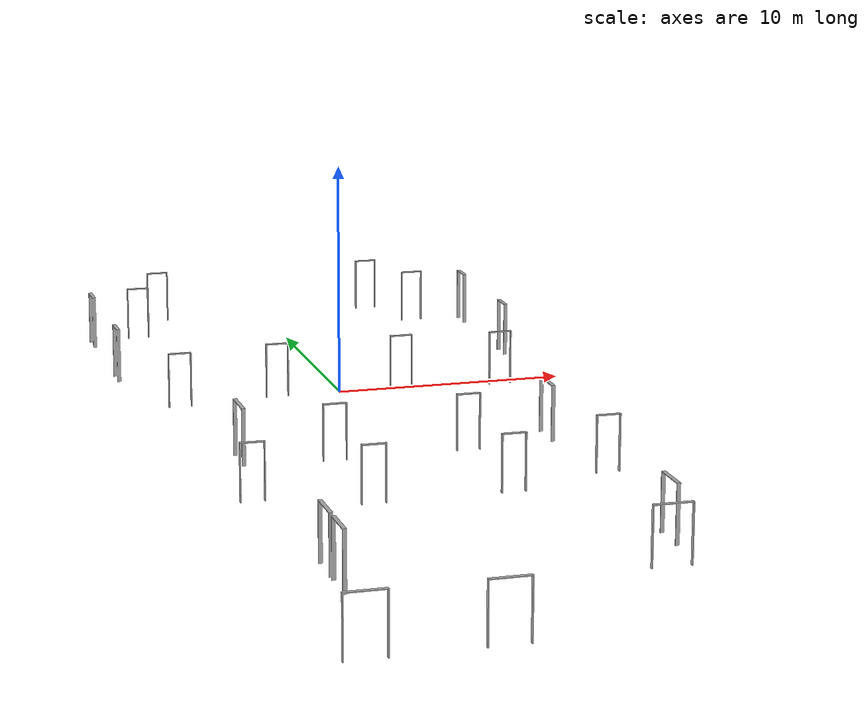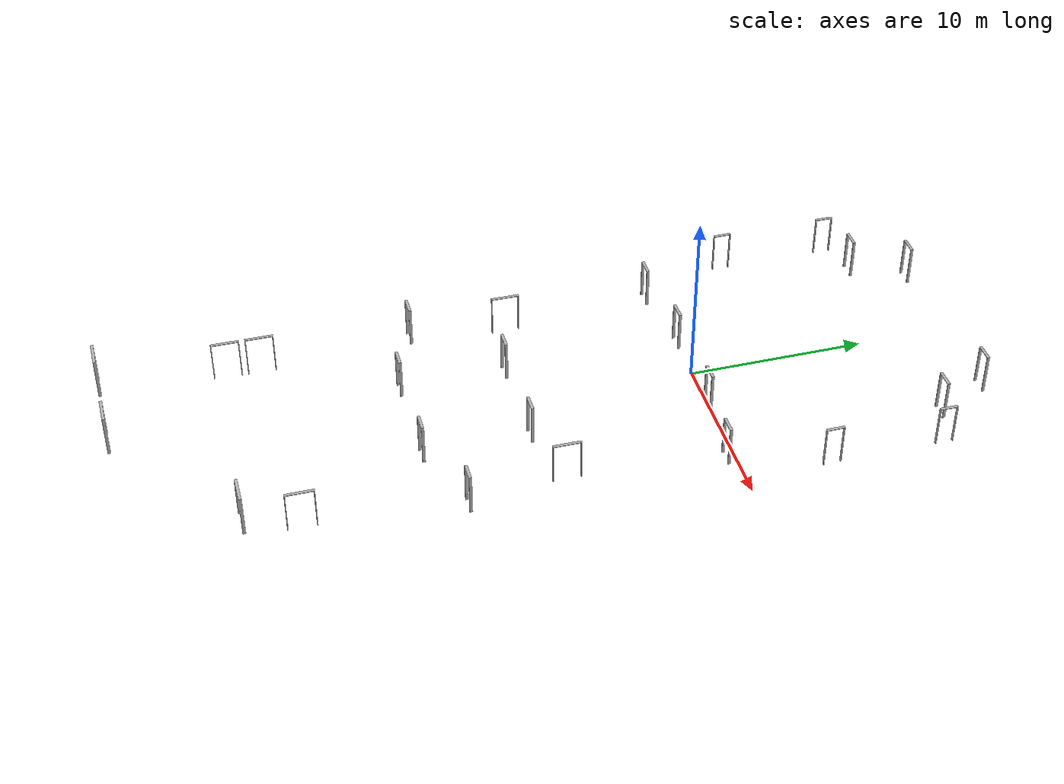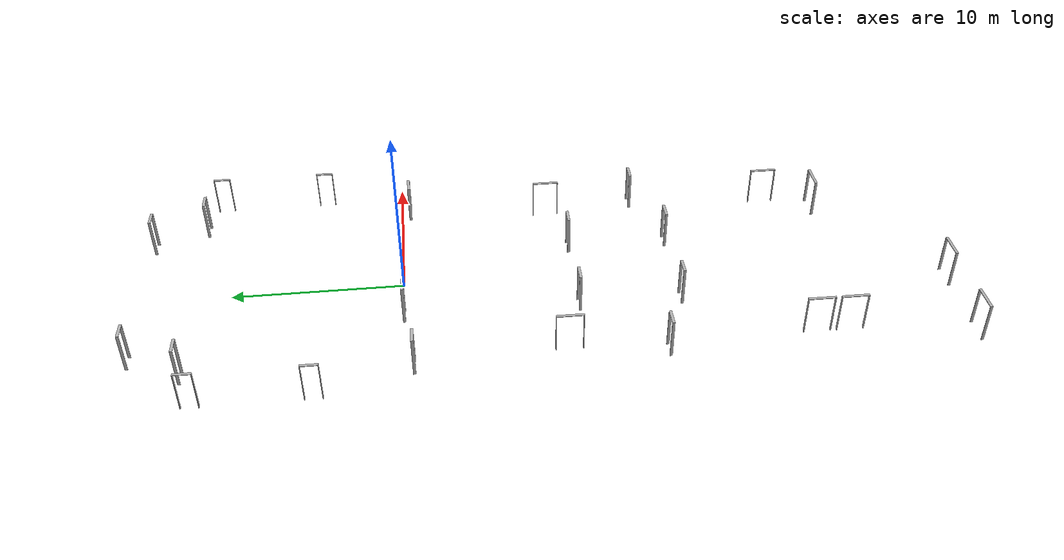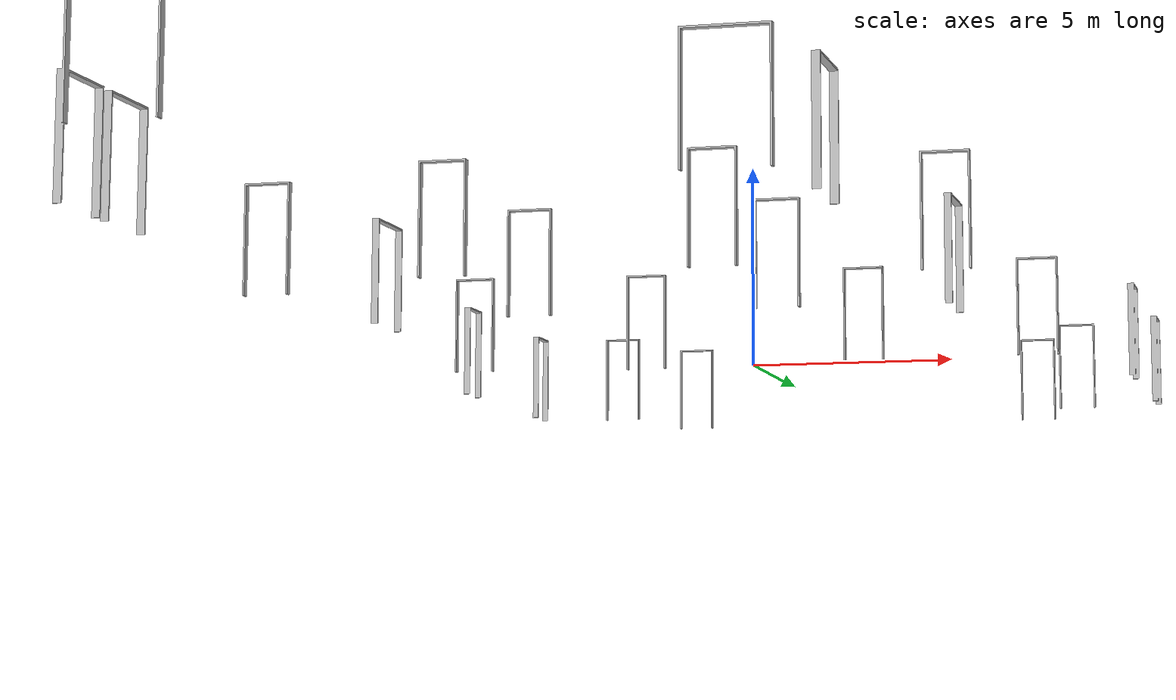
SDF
<?xml version="1.0" ?>
<sdf version="1.6">
  <model name="aws_robomaker_hospital_floor_01_doorframes">
    <link name="link">
      <visual name="visual">
	    <geometry>
          <mesh>
            <uri>model://aws_robomaker_hospital_floor_01_doorframes/meshes/aws_robomaker_hospital_floor_01_doorframes_visual.dae</uri>
          </mesh>
        </geometry>
      </visual>
      <collision name="collision">
        <geometry>
          <mesh>
            <uri>model://aws_robomaker_hospital_floor_01_doorframes/meshes/aws_robomaker_hospital_floor_01_doorframes_collision.dae</uri>
          </mesh>
        </geometry>
      </collision>
</link>
  <static>1</static>
  </model>
</sdf>
